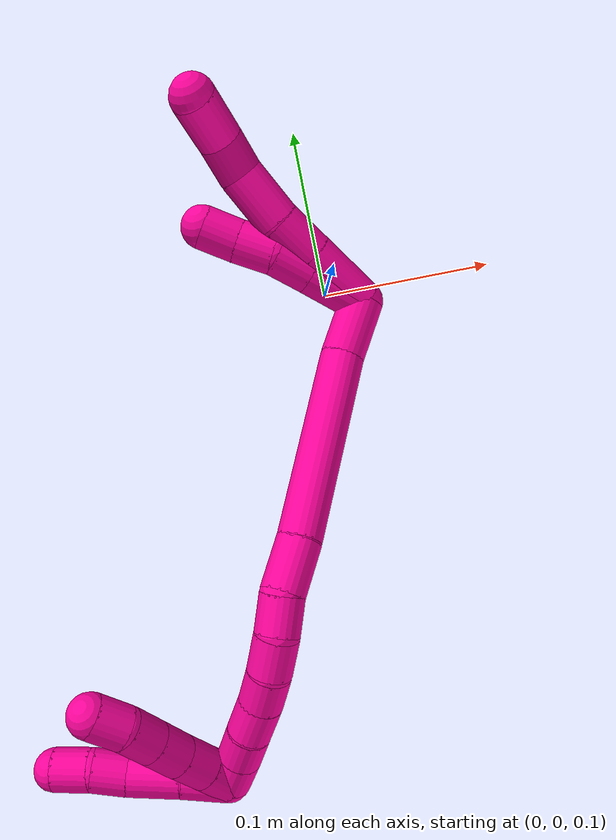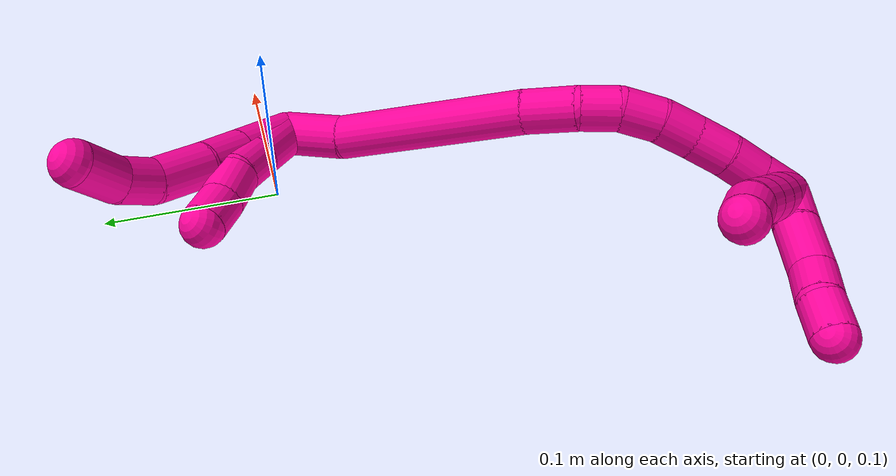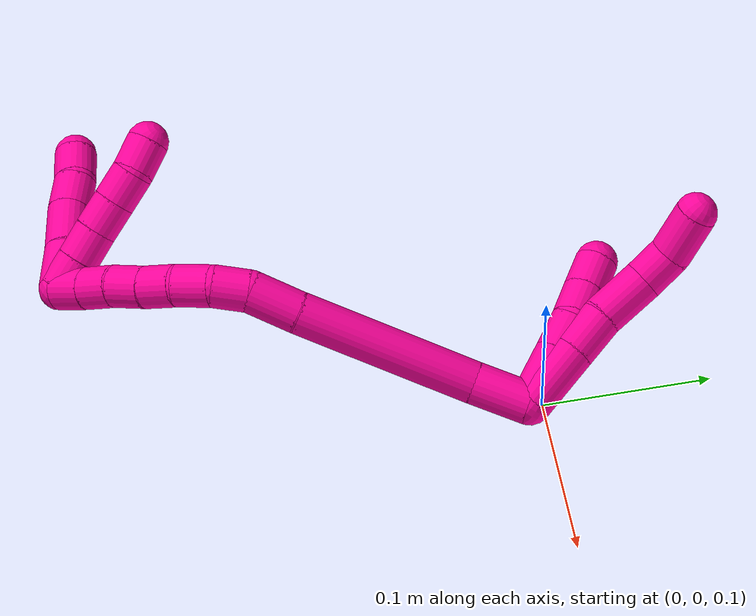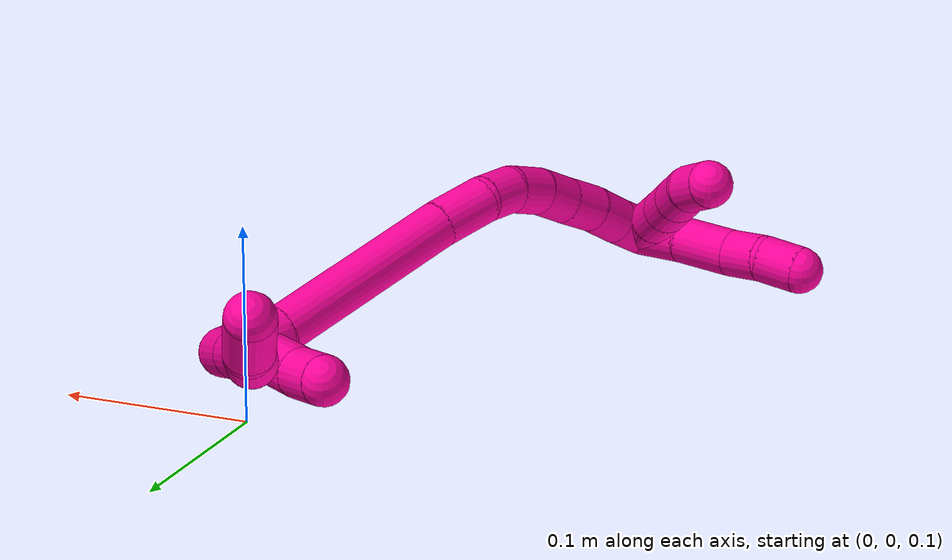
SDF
<sdf version="1.7">
 <world name="default">
  <model name="18">
   <static>0</static>
   <link name="18">
    <collision name="collision-cylinder-e_1_2_8">
     <pose>-0.008768 0.008184 0.015818 -0.477465 -0.457477 0.1132</pose>
     <geometry><cylinder><radius>0.0125</radius><length>0.039703</length></cylinder></geometry>
     <surface>
      <friction><ode><mu>1.16</mu><mu2>1.16</mu2><slip1>0</slip1><slip2>0</slip2></ode></friction>
      <contact><ode><kp>1e+06</kp><kd>1</kd><max_vel>0</max_vel><min_depth>0.001</min_depth></ode></contact>
     </surface>
    </collision>
    <visual name="visual-cylinder-e_1_2_8">
     <pose>-0.008768 0.008184 0.015818 -0.477465 -0.457477 0.1132</pose>
     <geometry><cylinder><radius>0.0125</radius><length>0.039703</length></cylinder></geometry>
     <material><ambient>1 0.007843 0.615686 1</ambient></material>
    </visual>
    <collision name="collision-cylinder-e_2_8_9">
     <pose>-0.023279 0.02175 0.042058 -0.476704 -0.455339 0.112467</pose>
     <geometry><cylinder><radius>0.0125</radius><length>0.026118</length></cylinder></geometry>
     <surface>
      <friction><ode><mu>1.16</mu><mu2>1.16</mu2><slip1>0</slip1><slip2>0</slip2></ode></friction>
      <contact><ode><kp>1e+06</kp><kd>1</kd><max_vel>0</max_vel><min_depth>0.001</min_depth></ode></contact>
     </surface>
    </collision>
    <visual name="visual-cylinder-e_2_8_9">
     <pose>-0.023279 0.02175 0.042058 -0.476704 -0.455339 0.112467</pose>
     <geometry><cylinder><radius>0.0125</radius><length>0.026118</length></cylinder></geometry>
     <material><ambient>1 0.007843 0.615686 1</ambient></material>
    </visual>
    <collision name="collision-cylinder-e_3_9_10">
     <pose>-0.034486 0.035646 0.065376 -0.583485 -0.339829 0.102957</pose>
     <geometry><cylinder><radius>0.0125</radius><length>0.032783</length></cylinder></geometry>
     <surface>
      <friction><ode><mu>1.16</mu><mu2>1.16</mu2><slip1>0</slip1><slip2>0</slip2></ode></friction>
      <contact><ode><kp>1e+06</kp><kd>1</kd><max_vel>0</max_vel><min_depth>0.001</min_depth></ode></contact>
     </surface>
    </collision>
    <visual name="visual-cylinder-e_3_9_10">
     <pose>-0.034486 0.035646 0.065376 -0.583485 -0.339829 0.102957</pose>
     <geometry><cylinder><radius>0.0125</radius><length>0.032783</length></cylinder></geometry>
     <material><ambient>1 0.007843 0.615686 1</ambient></material>
    </visual>
    <collision name="collision-cylinder-e_4_10_11">
     <pose>-0.041833 0.047311 0.088654 -0.294643 -0.171883 0.025568</pose>
     <geometry><cylinder><radius>0.0125</radius><length>0.022023</length></cylinder></geometry>
     <surface>
      <friction><ode><mu>1.16</mu><mu2>1.16</mu2><slip1>0</slip1><slip2>0</slip2></ode></friction>
      <contact><ode><kp>1e+06</kp><kd>1</kd><max_vel>0</max_vel><min_depth>0.001</min_depth></ode></contact>
     </surface>
    </collision>
    <visual name="visual-cylinder-e_4_10_11">
     <pose>-0.041833 0.047311 0.088654 -0.294643 -0.171883 0.025568</pose>
     <geometry><cylinder><radius>0.0125</radius><length>0.022023</length></cylinder></geometry>
     <material><ambient>1 0.007843 0.615686 1</ambient></material>
    </visual>
    <collision name="collision-cylinder-e_5_11_6">
     <pose>-0.045948 0.049668 0.11353 0.054672 -0.152568 -0.00418</pose>
     <geometry><cylinder><radius>0.0125</radius><length>0.029373</length></cylinder></geometry>
     <surface>
      <friction><ode><mu>1.16</mu><mu2>1.16</mu2><slip1>0</slip1><slip2>0</slip2></ode></friction>
      <contact><ode><kp>1e+06</kp><kd>1</kd><max_vel>0</max_vel><min_depth>0.001</min_depth></ode></contact>
     </surface>
    </collision>
    <visual name="visual-cylinder-e_5_11_6">
     <pose>-0.045948 0.049668 0.11353 0.054672 -0.152568 -0.00418</pose>
     <geometry><cylinder><radius>0.0125</radius><length>0.029373</length></cylinder></geometry>
     <material><ambient>1 0.007843 0.615686 1</ambient></material>
    </visual>
    <collision name="collision-cylinder-e_1_2_12">
     <pose>-0.011109 0.005902 0.011745 -0.465625 -0.70165 0.173115</pose>
     <geometry><cylinder><radius>0.0125</radius><length>0.03442</length></cylinder></geometry>
     <surface>
      <friction><ode><mu>1.16</mu><mu2>1.16</mu2><slip1>0</slip1><slip2>0</slip2></ode></friction>
      <contact><ode><kp>1e+06</kp><kd>1</kd><max_vel>0</max_vel><min_depth>0.001</min_depth></ode></contact>
     </surface>
    </collision>
    <visual name="visual-cylinder-e_1_2_12">
     <pose>-0.011109 0.005902 0.011745 -0.465625 -0.70165 0.173115</pose>
     <geometry><cylinder><radius>0.0125</radius><length>0.03442</length></cylinder></geometry>
     <material><ambient>1 0.007843 0.615686 1</ambient></material>
    </visual>
    <collision name="collision-cylinder-e_2_12_13">
     <pose>-0.029675 0.015503 0.031177 -0.448553 -0.71838 0.170887</pose>
     <geometry><cylinder><radius>0.0125</radius><length>0.022663</length></cylinder></geometry>
     <surface>
      <friction><ode><mu>1.16</mu><mu2>1.16</mu2><slip1>0</slip1><slip2>0</slip2></ode></friction>
      <contact><ode><kp>1e+06</kp><kd>1</kd><max_vel>0</max_vel><min_depth>0.001</min_depth></ode></contact>
     </surface>
    </collision>
    <visual name="visual-cylinder-e_2_12_13">
     <pose>-0.029675 0.015503 0.031177 -0.448553 -0.71838 0.170887</pose>
     <geometry><cylinder><radius>0.0125</radius><length>0.022663</length></cylinder></geometry>
     <material><ambient>1 0.007843 0.615686 1</ambient></material>
    </visual>
    <collision name="collision-cylinder-e_3_13_14">
     <pose>-0.04575 0.023946 0.043621 -0.784071 -0.908612 0.398468</pose>
     <geometry><cylinder><radius>0.0125</radius><length>0.021852</length></cylinder></geometry>
     <surface>
      <friction><ode><mu>1.16</mu><mu2>1.16</mu2><slip1>0</slip1><slip2>0</slip2></ode></friction>
      <contact><ode><kp>1e+06</kp><kd>1</kd><max_vel>0</max_vel><min_depth>0.001</min_depth></ode></contact>
     </surface>
    </collision>
    <visual name="visual-cylinder-e_3_13_14">
     <pose>-0.04575 0.023946 0.043621 -0.784071 -0.908612 0.398468</pose>
     <geometry><cylinder><radius>0.0125</radius><length>0.021852</length></cylinder></geometry>
     <material><ambient>1 0.007843 0.615686 1</ambient></material>
    </visual>
    <collision name="collision-cylinder-e_4_14_5">
     <pose>-0.062233 0.032583 0.0542 -0.589333 -0.843294 0.270607</pose>
     <geometry><cylinder><radius>0.0125</radius><length>0.021065</length></cylinder></geometry>
     <surface>
      <friction><ode><mu>1.16</mu><mu2>1.16</mu2><slip1>0</slip1><slip2>0</slip2></ode></friction>
      <contact><ode><kp>1e+06</kp><kd>1</kd><max_vel>0</max_vel><min_depth>0.001</min_depth></ode></contact>
     </surface>
    </collision>
    <visual name="visual-cylinder-e_4_14_5">
     <pose>-0.062233 0.032583 0.0542 -0.589333 -0.843294 0.270607</pose>
     <geometry><cylinder><radius>0.0125</radius><length>0.021065</length></cylinder></geometry>
     <material><ambient>1 0.007843 0.615686 1</ambient></material>
    </visual>
    <collision name="collision-cylinder-e_1_2_15">
     <pose>-0.010362 -0.012506 -0.006009 2.01874 -0.641453 -0.971883</pose>
     <geometry><cylinder><radius>0.0125</radius><length>0.034634</length></cylinder></geometry>
     <surface>
      <friction><ode><mu>1.16</mu><mu2>1.16</mu2><slip1>0</slip1><slip2>0</slip2></ode></friction>
      <contact><ode><kp>1e+06</kp><kd>1</kd><max_vel>0</max_vel><min_depth>0.001</min_depth></ode></contact>
     </surface>
    </collision>
    <visual name="visual-cylinder-e_1_2_15">
     <pose>-0.010362 -0.012506 -0.006009 2.01874 -0.641453 -0.971883</pose>
     <geometry><cylinder><radius>0.0125</radius><length>0.034634</length></cylinder></geometry>
     <material><ambient>1 0.007843 0.615686 1</ambient></material>
    </visual>
    <collision name="collision-cylinder-e_2_15_16">
     <pose>-0.047148 -0.071065 -0.024922 1.84397 -0.50476 -0.655587</pose>
     <geometry><cylinder><radius>0.0125</radius><length>0.109282</length></cylinder></geometry>
     <surface>
      <friction><ode><mu>1.16</mu><mu2>1.16</mu2><slip1>0</slip1><slip2>0</slip2></ode></friction>
      <contact><ode><kp>1e+06</kp><kd>1</kd><max_vel>0</max_vel><min_depth>0.001</min_depth></ode></contact>
     </surface>
    </collision>
    <visual name="visual-cylinder-e_2_15_16">
     <pose>-0.047148 -0.071065 -0.024922 1.84397 -0.50476 -0.655587</pose>
     <geometry><cylinder><radius>0.0125</radius><length>0.109282</length></cylinder></geometry>
     <material><ambient>1 0.007843 0.615686 1</ambient></material>
    </visual>
    <collision name="collision-cylinder-e_3_16_17">
     <pose>-0.081913 -0.129222 -0.041467 1.8631 -0.583309 -0.767654</pose>
     <geometry><cylinder><radius>0.0125</radius><length>0.030287</length></cylinder></geometry>
     <surface>
      <friction><ode><mu>1.16</mu><mu2>1.16</mu2><slip1>0</slip1><slip2>0</slip2></ode></friction>
      <contact><ode><kp>1e+06</kp><kd>1</kd><max_vel>0</max_vel><min_depth>0.001</min_depth></ode></contact>
     </surface>
    </collision>
    <visual name="visual-cylinder-e_3_16_17">
     <pose>-0.081913 -0.129222 -0.041467 1.8631 -0.583309 -0.767654</pose>
     <geometry><cylinder><radius>0.0125</radius><length>0.030287</length></cylinder></geometry>
     <material><ambient>1 0.007843 0.615686 1</ambient></material>
    </visual>
    <collision name="collision-cylinder-e_4_17_18">
     <pose>-0.095047 -0.149325 -0.050566 2.1694 -0.459668 -0.833699</pose>
     <geometry><cylinder><radius>0.0125</radius><length>0.02161</length></cylinder></geometry>
     <surface>
      <friction><ode><mu>1.16</mu><mu2>1.16</mu2><slip1>0</slip1><slip2>0</slip2></ode></friction>
      <contact><ode><kp>1e+06</kp><kd>1</kd><max_vel>0</max_vel><min_depth>0.001</min_depth></ode></contact>
     </surface>
    </collision>
    <visual name="visual-cylinder-e_4_17_18">
     <pose>-0.095047 -0.149325 -0.050566 2.1694 -0.459668 -0.833699</pose>
     <geometry><cylinder><radius>0.0125</radius><length>0.02161</length></cylinder></geometry>
     <material><ambient>1 0.007843 0.615686 1</ambient></material>
    </visual>
    <collision name="collision-cylinder-e_5_18_19">
     <pose>-0.105515 -0.163062 -0.063623 2.49492 -0.537314 -1.37555</pose>
     <geometry><cylinder><radius>0.0125</radius><length>0.02217</length></cylinder></geometry>
     <surface>
      <friction><ode><mu>1.16</mu><mu2>1.16</mu2><slip1>0</slip1><slip2>0</slip2></ode></friction>
      <contact><ode><kp>1e+06</kp><kd>1</kd><max_vel>0</max_vel><min_depth>0.001</min_depth></ode></contact>
     </surface>
    </collision>
    <visual name="visual-cylinder-e_5_18_19">
     <pose>-0.105515 -0.163062 -0.063623 2.49492 -0.537314 -1.37555</pose>
     <geometry><cylinder><radius>0.0125</radius><length>0.02217</length></cylinder></geometry>
     <material><ambient>1 0.007843 0.615686 1</ambient></material>
    </visual>
    <collision name="collision-cylinder-e_6_19_20">
     <pose>-0.116828 -0.172402 -0.079033 2.70946 -0.580425 -1.87398</pose>
     <geometry><cylinder><radius>0.0125</radius><length>0.02057</length></cylinder></geometry>
     <surface>
      <friction><ode><mu>1.16</mu><mu2>1.16</mu2><slip1>0</slip1><slip2>0</slip2></ode></friction>
      <contact><ode><kp>1e+06</kp><kd>1</kd><max_vel>0</max_vel><min_depth>0.001</min_depth></ode></contact>
     </surface>
    </collision>
    <visual name="visual-cylinder-e_6_19_20">
     <pose>-0.116828 -0.172402 -0.079033 2.70946 -0.580425 -1.87398</pose>
     <geometry><cylinder><radius>0.0125</radius><length>0.02057</length></cylinder></geometry>
     <material><ambient>1 0.007843 0.615686 1</ambient></material>
    </visual>
    <collision name="collision-cylinder-e_7_20_21">
     <pose>-0.129031 -0.179632 -0.094403 2.6942 -0.664103 -1.97515</pose>
     <geometry><cylinder><radius>0.0125</radius><length>0.021296</length></cylinder></geometry>
     <surface>
      <friction><ode><mu>1.16</mu><mu2>1.16</mu2><slip1>0</slip1><slip2>0</slip2></ode></friction>
      <contact><ode><kp>1e+06</kp><kd>1</kd><max_vel>0</max_vel><min_depth>0.001</min_depth></ode></contact>
     </surface>
    </collision>
    <visual name="visual-cylinder-e_7_20_21">
     <pose>-0.129031 -0.179632 -0.094403 2.6942 -0.664103 -1.97515</pose>
     <geometry><cylinder><radius>0.0125</radius><length>0.021296</length></cylinder></geometry>
     <material><ambient>1 0.007843 0.615686 1</ambient></material>
    </visual>
    <collision name="collision-cylinder-e_8_21_22">
     <pose>-0.141408 -0.185719 -0.109751 2.83566 -0.618611 -2.24259</pose>
     <geometry><cylinder><radius>0.0125</radius><length>0.020051</length></cylinder></geometry>
     <surface>
      <friction><ode><mu>1.16</mu><mu2>1.16</mu2><slip1>0</slip1><slip2>0</slip2></ode></friction>
      <contact><ode><kp>1e+06</kp><kd>1</kd><max_vel>0</max_vel><min_depth>0.001</min_depth></ode></contact>
     </surface>
    </collision>
    <visual name="visual-cylinder-e_8_21_22">
     <pose>-0.141408 -0.185719 -0.109751 2.83566 -0.618611 -2.24259</pose>
     <geometry><cylinder><radius>0.0125</radius><length>0.020051</length></cylinder></geometry>
     <material><ambient>1 0.007843 0.615686 1</ambient></material>
    </visual>
    <collision name="collision-cylinder-e_9_22_1">
     <pose>-0.153392 -0.190801 -0.125027 2.80477 -0.660984 -2.22137</pose>
     <geometry><cylinder><radius>0.0125</radius><length>0.0201</length></cylinder></geometry>
     <surface>
      <friction><ode><mu>1.16</mu><mu2>1.16</mu2><slip1>0</slip1><slip2>0</slip2></ode></friction>
      <contact><ode><kp>1e+06</kp><kd>1</kd><max_vel>0</max_vel><min_depth>0.001</min_depth></ode></contact>
     </surface>
    </collision>
    <visual name="visual-cylinder-e_9_22_1">
     <pose>-0.153392 -0.190801 -0.125027 2.80477 -0.660984 -2.22137</pose>
     <geometry><cylinder><radius>0.0125</radius><length>0.0201</length></cylinder></geometry>
     <material><ambient>1 0.007843 0.615686 1</ambient></material>
    </visual>
    <collision name="collision-cylinder-e_1_1_23">
     <pose>-0.171761 -0.190305 -0.127656 -0.570602 -1.1288 0.367196</pose>
     <geometry><cylinder><radius>0.0125</radius><length>0.026993</length></cylinder></geometry>
     <surface>
      <friction><ode><mu>1.16</mu><mu2>1.16</mu2><slip1>0</slip1><slip2>0</slip2></ode></friction>
      <contact><ode><kp>1e+06</kp><kd>1</kd><max_vel>0</max_vel><min_depth>0.001</min_depth></ode></contact>
     </surface>
    </collision>
    <visual name="visual-cylinder-e_1_1_23">
     <pose>-0.171761 -0.190305 -0.127656 -0.570602 -1.1288 0.367196</pose>
     <geometry><cylinder><radius>0.0125</radius><length>0.026993</length></cylinder></geometry>
     <material><ambient>1 0.007843 0.615686 1</ambient></material>
    </visual>
    <collision name="collision-cylinder-e_2_23_24">
     <pose>-0.198367 -0.183521 -0.119087 -0.779247 -1.22346 0.560907</pose>
     <geometry><cylinder><radius>0.0125</radius><length>0.030644</length></cylinder></geometry>
     <surface>
      <friction><ode><mu>1.16</mu><mu2>1.16</mu2><slip1>0</slip1><slip2>0</slip2></ode></friction>
      <contact><ode><kp>1e+06</kp><kd>1</kd><max_vel>0</max_vel><min_depth>0.001</min_depth></ode></contact>
     </surface>
    </collision>
    <visual name="visual-cylinder-e_2_23_24">
     <pose>-0.198367 -0.183521 -0.119087 -0.779247 -1.22346 0.560907</pose>
     <geometry><cylinder><radius>0.0125</radius><length>0.030644</length></cylinder></geometry>
     <material><ambient>1 0.007843 0.615686 1</ambient></material>
    </visual>
    <collision name="collision-cylinder-e_3_24_25">
     <pose>-0.221889 -0.177289 -0.111038 -0.534237 -1.06562 0.319991</pose>
     <geometry><cylinder><radius>0.0125</radius><length>0.020832</length></cylinder></geometry>
     <surface>
      <friction><ode><mu>1.16</mu><mu2>1.16</mu2><slip1>0</slip1><slip2>0</slip2></ode></friction>
      <contact><ode><kp>1e+06</kp><kd>1</kd><max_vel>0</max_vel><min_depth>0.001</min_depth></ode></contact>
     </surface>
    </collision>
    <visual name="visual-cylinder-e_3_24_25">
     <pose>-0.221889 -0.177289 -0.111038 -0.534237 -1.06562 0.319991</pose>
     <geometry><cylinder><radius>0.0125</radius><length>0.020832</length></cylinder></geometry>
     <material><ambient>1 0.007843 0.615686 1</ambient></material>
    </visual>
    <collision name="collision-cylinder-e_4_25_4">
     <pose>-0.241291 -0.172097 -0.104916 -0.97415 -1.27149 0.745181</pose>
     <geometry><cylinder><radius>0.0125</radius><length>0.021531</length></cylinder></geometry>
     <surface>
      <friction><ode><mu>1.16</mu><mu2>1.16</mu2><slip1>0</slip1><slip2>0</slip2></ode></friction>
      <contact><ode><kp>1e+06</kp><kd>1</kd><max_vel>0</max_vel><min_depth>0.001</min_depth></ode></contact>
     </surface>
    </collision>
    <visual name="visual-cylinder-e_4_25_4">
     <pose>-0.241291 -0.172097 -0.104916 -0.97415 -1.27149 0.745181</pose>
     <geometry><cylinder><radius>0.0125</radius><length>0.021531</length></cylinder></geometry>
     <material><ambient>1 0.007843 0.615686 1</ambient></material>
    </visual>
    <collision name="collision-cylinder-e_1_1_26">
     <pose>-0.163347 -0.191759 -0.12341 -0.180775 -0.388291 0.035638</pose>
     <geometry><cylinder><radius>0.0125</radius><length>0.02</length></cylinder></geometry>
     <surface>
      <friction><ode><mu>1.16</mu><mu2>1.16</mu2><slip1>0</slip1><slip2>0</slip2></ode></friction>
      <contact><ode><kp>1e+06</kp><kd>1</kd><max_vel>0</max_vel><min_depth>0.001</min_depth></ode></contact>
     </surface>
    </collision>
    <visual name="visual-cylinder-e_1_1_26">
     <pose>-0.163347 -0.191759 -0.12341 -0.180775 -0.388291 0.035638</pose>
     <geometry><cylinder><radius>0.0125</radius><length>0.02</length></cylinder></geometry>
     <material><ambient>1 0.007843 0.615686 1</ambient></material>
    </visual>
    <collision name="collision-cylinder-e_2_26_27">
     <pose>-0.171193 -0.188464 -0.105313 -0.179397 -0.417981 0.038146</pose>
     <geometry><cylinder><radius>0.0125</radius><length>0.02</length></cylinder></geometry>
     <surface>
      <friction><ode><mu>1.16</mu><mu2>1.16</mu2><slip1>0</slip1><slip2>0</slip2></ode></friction>
      <contact><ode><kp>1e+06</kp><kd>1</kd><max_vel>0</max_vel><min_depth>0.001</min_depth></ode></contact>
     </surface>
    </collision>
    <visual name="visual-cylinder-e_2_26_27">
     <pose>-0.171193 -0.188464 -0.105313 -0.179397 -0.417981 0.038146</pose>
     <geometry><cylinder><radius>0.0125</radius><length>0.02</length></cylinder></geometry>
     <material><ambient>1 0.007843 0.615686 1</ambient></material>
    </visual>
    <collision name="collision-cylinder-e_3_27_28">
     <pose>-0.179054 -0.18503 -0.087249 -0.196222 -0.390058 0.038882</pose>
     <geometry><cylinder><radius>0.0125</radius><length>0.02</length></cylinder></geometry>
     <surface>
      <friction><ode><mu>1.16</mu><mu2>1.16</mu2><slip1>0</slip1><slip2>0</slip2></ode></friction>
      <contact><ode><kp>1e+06</kp><kd>1</kd><max_vel>0</max_vel><min_depth>0.001</min_depth></ode></contact>
     </surface>
    </collision>
    <visual name="visual-cylinder-e_3_27_28">
     <pose>-0.179054 -0.18503 -0.087249 -0.196222 -0.390058 0.038882</pose>
     <geometry><cylinder><radius>0.0125</radius><length>0.02</length></cylinder></geometry>
     <material><ambient>1 0.007843 0.615686 1</ambient></material>
    </visual>
    <collision name="collision-cylinder-e_4_28_29">
     <pose>-0.186685 -0.181447 -0.069112 -0.193817 -0.392873 0.038687</pose>
     <geometry><cylinder><radius>0.0125</radius><length>0.02</length></cylinder></geometry>
     <surface>
      <friction><ode><mu>1.16</mu><mu2>1.16</mu2><slip1>0</slip1><slip2>0</slip2></ode></friction>
      <contact><ode><kp>1e+06</kp><kd>1</kd><max_vel>0</max_vel><min_depth>0.001</min_depth></ode></contact>
     </surface>
    </collision>
    <visual name="visual-cylinder-e_4_28_29">
     <pose>-0.186685 -0.181447 -0.069112 -0.193817 -0.392873 0.038687</pose>
     <geometry><cylinder><radius>0.0125</radius><length>0.02</length></cylinder></geometry>
     <material><ambient>1 0.007843 0.615686 1</ambient></material>
    </visual>
    <collision name="collision-cylinder-e_5_29_3">
     <pose>-0.196566 -0.177257 -0.05246 -0.307702 -0.650023 0.104414</pose>
     <geometry><cylinder><radius>0.0125</radius><length>0.02</length></cylinder></geometry>
     <surface>
      <friction><ode><mu>1.16</mu><mu2>1.16</mu2><slip1>0</slip1><slip2>0</slip2></ode></friction>
      <contact><ode><kp>1e+06</kp><kd>1</kd><max_vel>0</max_vel><min_depth>0.001</min_depth></ode></contact>
     </surface>
    </collision>
    <visual name="visual-cylinder-e_5_29_3">
     <pose>-0.196566 -0.177257 -0.05246 -0.307702 -0.650023 0.104414</pose>
     <geometry><cylinder><radius>0.0125</radius><length>0.02</length></cylinder></geometry>
     <material><ambient>1 0.007843 0.615686 1</ambient></material>
    </visual>
    <collision name="collision-sphere-3">
     <pose>-0.202618 -0.174846 -0.044873 0 -0 0</pose>
     <geometry><sphere><radius>0.0125</radius></sphere></geometry>
     <surface>
      <friction><ode><mu>1.16</mu><mu2>1.16</mu2><slip1>0</slip1><slip2>0</slip2></ode></friction>
      <contact><ode><kp>1e+06</kp><kd>1</kd><max_vel>0</max_vel><min_depth>0.001</min_depth></ode></contact>
     </surface>
    </collision>
    <visual name="visual-sphere-3">
     <pose>-0.202618 -0.174846 -0.044873 0 -0 0</pose>
     <geometry><sphere><radius>0.0125</radius></sphere></geometry>
     <material><ambient>1 0.007843 0.615686 1</ambient></material>
    </visual>
    <collision name="collision-sphere-29">
     <pose>-0.190514 -0.179668 -0.060047 0 -0 0</pose>
     <geometry><sphere><radius>0.0125</radius></sphere></geometry>
     <surface>
      <friction><ode><mu>1.16</mu><mu2>1.16</mu2><slip1>0</slip1><slip2>0</slip2></ode></friction>
      <contact><ode><kp>1e+06</kp><kd>1</kd><max_vel>0</max_vel><min_depth>0.001</min_depth></ode></contact>
     </surface>
    </collision>
    <visual name="visual-sphere-29">
     <pose>-0.190514 -0.179668 -0.060047 0 -0 0</pose>
     <geometry><sphere><radius>0.0125</radius></sphere></geometry>
     <material><ambient>1 0.007843 0.615686 1</ambient></material>
    </visual>
    <collision name="collision-sphere-28">
     <pose>-0.182857 -0.183227 -0.078177 0 -0 0</pose>
     <geometry><sphere><radius>0.0125</radius></sphere></geometry>
     <surface>
      <friction><ode><mu>1.16</mu><mu2>1.16</mu2><slip1>0</slip1><slip2>0</slip2></ode></friction>
      <contact><ode><kp>1e+06</kp><kd>1</kd><max_vel>0</max_vel><min_depth>0.001</min_depth></ode></contact>
     </surface>
    </collision>
    <visual name="visual-sphere-28">
     <pose>-0.182857 -0.183227 -0.078177 0 -0 0</pose>
     <geometry><sphere><radius>0.0125</radius></sphere></geometry>
     <material><ambient>1 0.007843 0.615686 1</ambient></material>
    </visual>
    <collision name="collision-sphere-27">
     <pose>-0.175252 -0.186833 -0.09632 0 -0 0</pose>
     <geometry><sphere><radius>0.0125</radius></sphere></geometry>
     <surface>
      <friction><ode><mu>1.16</mu><mu2>1.16</mu2><slip1>0</slip1><slip2>0</slip2></ode></friction>
      <contact><ode><kp>1e+06</kp><kd>1</kd><max_vel>0</max_vel><min_depth>0.001</min_depth></ode></contact>
     </surface>
    </collision>
    <visual name="visual-sphere-27">
     <pose>-0.175252 -0.186833 -0.09632 0 -0 0</pose>
     <geometry><sphere><radius>0.0125</radius></sphere></geometry>
     <material><ambient>1 0.007843 0.615686 1</ambient></material>
    </visual>
    <collision name="collision-sphere-26">
     <pose>-0.167133 -0.190095 -0.114305 0 -0 0</pose>
     <geometry><sphere><radius>0.0125</radius></sphere></geometry>
     <surface>
      <friction><ode><mu>1.16</mu><mu2>1.16</mu2><slip1>0</slip1><slip2>0</slip2></ode></friction>
      <contact><ode><kp>1e+06</kp><kd>1</kd><max_vel>0</max_vel><min_depth>0.001</min_depth></ode></contact>
     </surface>
    </collision>
    <visual name="visual-sphere-26">
     <pose>-0.167133 -0.190095 -0.114305 0 -0 0</pose>
     <geometry><sphere><radius>0.0125</radius></sphere></geometry>
     <material><ambient>1 0.007843 0.615686 1</ambient></material>
    </visual>
    <collision name="collision-sphere-4">
     <pose>-0.251578 -0.169471 -0.103132 0 -0 0</pose>
     <geometry><sphere><radius>0.0125</radius></sphere></geometry>
     <surface>
      <friction><ode><mu>1.16</mu><mu2>1.16</mu2><slip1>0</slip1><slip2>0</slip2></ode></friction>
      <contact><ode><kp>1e+06</kp><kd>1</kd><max_vel>0</max_vel><min_depth>0.001</min_depth></ode></contact>
     </surface>
    </collision>
    <visual name="visual-sphere-4">
     <pose>-0.251578 -0.169471 -0.103132 0 -0 0</pose>
     <geometry><sphere><radius>0.0125</radius></sphere></geometry>
     <material><ambient>1 0.007843 0.615686 1</ambient></material>
    </visual>
    <collision name="collision-sphere-25">
     <pose>-0.231004 -0.174722 -0.106699 0 -0 0</pose>
     <geometry><sphere><radius>0.0125</radius></sphere></geometry>
     <surface>
      <friction><ode><mu>1.16</mu><mu2>1.16</mu2><slip1>0</slip1><slip2>0</slip2></ode></friction>
      <contact><ode><kp>1e+06</kp><kd>1</kd><max_vel>0</max_vel><min_depth>0.001</min_depth></ode></contact>
     </surface>
    </collision>
    <visual name="visual-sphere-25">
     <pose>-0.231004 -0.174722 -0.106699 0 -0 0</pose>
     <geometry><sphere><radius>0.0125</radius></sphere></geometry>
     <material><ambient>1 0.007843 0.615686 1</ambient></material>
    </visual>
    <collision name="collision-sphere-24">
     <pose>-0.212774 -0.179856 -0.115377 0 -0 0</pose>
     <geometry><sphere><radius>0.0125</radius></sphere></geometry>
     <surface>
      <friction><ode><mu>1.16</mu><mu2>1.16</mu2><slip1>0</slip1><slip2>0</slip2></ode></friction>
      <contact><ode><kp>1e+06</kp><kd>1</kd><max_vel>0</max_vel><min_depth>0.001</min_depth></ode></contact>
     </surface>
    </collision>
    <visual name="visual-sphere-24">
     <pose>-0.212774 -0.179856 -0.115377 0 -0 0</pose>
     <geometry><sphere><radius>0.0125</radius></sphere></geometry>
     <material><ambient>1 0.007843 0.615686 1</ambient></material>
    </visual>
    <collision name="collision-sphere-23">
     <pose>-0.183961 -0.187186 -0.122798 0 -0 0</pose>
     <geometry><sphere><radius>0.0125</radius></sphere></geometry>
     <surface>
      <friction><ode><mu>1.16</mu><mu2>1.16</mu2><slip1>0</slip1><slip2>0</slip2></ode></friction>
      <contact><ode><kp>1e+06</kp><kd>1</kd><max_vel>0</max_vel><min_depth>0.001</min_depth></ode></contact>
     </surface>
    </collision>
    <visual name="visual-sphere-23">
     <pose>-0.183961 -0.187186 -0.122798 0 -0 0</pose>
     <geometry><sphere><radius>0.0125</radius></sphere></geometry>
     <material><ambient>1 0.007843 0.615686 1</ambient></material>
    </visual>
    <collision name="collision-sphere-1">
     <pose>-0.159561 -0.193423 -0.132515 0 -0 0</pose>
     <geometry><sphere><radius>0.0125</radius></sphere></geometry>
     <surface>
      <friction><ode><mu>1.16</mu><mu2>1.16</mu2><slip1>0</slip1><slip2>0</slip2></ode></friction>
      <contact><ode><kp>1e+06</kp><kd>1</kd><max_vel>0</max_vel><min_depth>0.001</min_depth></ode></contact>
     </surface>
    </collision>
    <visual name="visual-sphere-1">
     <pose>-0.159561 -0.193423 -0.132515 0 -0 0</pose>
     <geometry><sphere><radius>0.0125</radius></sphere></geometry>
     <material><ambient>1 0.007843 0.615686 1</ambient></material>
    </visual>
    <collision name="collision-sphere-22">
     <pose>-0.147222 -0.188179 -0.117539 0 -0 0</pose>
     <geometry><sphere><radius>0.0125</radius></sphere></geometry>
     <surface>
      <friction><ode><mu>1.16</mu><mu2>1.16</mu2><slip1>0</slip1><slip2>0</slip2></ode></friction>
      <contact><ode><kp>1e+06</kp><kd>1</kd><max_vel>0</max_vel><min_depth>0.001</min_depth></ode></contact>
     </surface>
    </collision>
    <visual name="visual-sphere-22">
     <pose>-0.147222 -0.188179 -0.117539 0 -0 0</pose>
     <geometry><sphere><radius>0.0125</radius></sphere></geometry>
     <material><ambient>1 0.007843 0.615686 1</ambient></material>
    </visual>
    <collision name="collision-sphere-21">
     <pose>-0.135594 -0.183259 -0.101962 0 -0 0</pose>
     <geometry><sphere><radius>0.0125</radius></sphere></geometry>
     <surface>
      <friction><ode><mu>1.16</mu><mu2>1.16</mu2><slip1>0</slip1><slip2>0</slip2></ode></friction>
      <contact><ode><kp>1e+06</kp><kd>1</kd><max_vel>0</max_vel><min_depth>0.001</min_depth></ode></contact>
     </surface>
    </collision>
    <visual name="visual-sphere-21">
     <pose>-0.135594 -0.183259 -0.101962 0 -0 0</pose>
     <geometry><sphere><radius>0.0125</radius></sphere></geometry>
     <material><ambient>1 0.007843 0.615686 1</ambient></material>
    </visual>
    <collision name="collision-sphere-6">
     <pose>-0.04818 0.048875 0.128025 0 -0 0</pose>
     <geometry><sphere><radius>0.0125</radius></sphere></geometry>
     <surface>
      <friction><ode><mu>1.16</mu><mu2>1.16</mu2><slip1>0</slip1><slip2>0</slip2></ode></friction>
      <contact><ode><kp>1e+06</kp><kd>1</kd><max_vel>0</max_vel><min_depth>0.001</min_depth></ode></contact>
     </surface>
    </collision>
    <visual name="visual-sphere-6">
     <pose>-0.04818 0.048875 0.128025 0 -0 0</pose>
     <geometry><sphere><radius>0.0125</radius></sphere></geometry>
     <material><ambient>1 0.007843 0.615686 1</ambient></material>
    </visual>
    <collision name="collision-sphere-11">
     <pose>-0.043716 0.050462 0.099036 0 -0 0</pose>
     <geometry><sphere><radius>0.0125</radius></sphere></geometry>
     <surface>
      <friction><ode><mu>1.16</mu><mu2>1.16</mu2><slip1>0</slip1><slip2>0</slip2></ode></friction>
      <contact><ode><kp>1e+06</kp><kd>1</kd><max_vel>0</max_vel><min_depth>0.001</min_depth></ode></contact>
     </surface>
    </collision>
    <visual name="visual-sphere-11">
     <pose>-0.043716 0.050462 0.099036 0 -0 0</pose>
     <geometry><sphere><radius>0.0125</radius></sphere></geometry>
     <material><ambient>1 0.007843 0.615686 1</ambient></material>
    </visual>
    <collision name="collision-sphere-10">
     <pose>-0.03995 0.04416 0.078273 0 -0 0</pose>
     <geometry><sphere><radius>0.0125</radius></sphere></geometry>
     <surface>
      <friction><ode><mu>1.16</mu><mu2>1.16</mu2><slip1>0</slip1><slip2>0</slip2></ode></friction>
      <contact><ode><kp>1e+06</kp><kd>1</kd><max_vel>0</max_vel><min_depth>0.001</min_depth></ode></contact>
     </surface>
    </collision>
    <visual name="visual-sphere-10">
     <pose>-0.03995 0.04416 0.078273 0 -0 0</pose>
     <geometry><sphere><radius>0.0125</radius></sphere></geometry>
     <material><ambient>1 0.007843 0.615686 1</ambient></material>
    </visual>
    <collision name="collision-sphere-9">
     <pose>-0.029022 0.027132 0.052478 0 -0 0</pose>
     <geometry><sphere><radius>0.0125</radius></sphere></geometry>
     <surface>
      <friction><ode><mu>1.16</mu><mu2>1.16</mu2><slip1>0</slip1><slip2>0</slip2></ode></friction>
      <contact><ode><kp>1e+06</kp><kd>1</kd><max_vel>0</max_vel><min_depth>0.001</min_depth></ode></contact>
     </surface>
    </collision>
    <visual name="visual-sphere-9">
     <pose>-0.029022 0.027132 0.052478 0 -0 0</pose>
     <geometry><sphere><radius>0.0125</radius></sphere></geometry>
     <material><ambient>1 0.007843 0.615686 1</ambient></material>
    </visual>
    <collision name="collision-sphere-2">
     <geometry><sphere><radius>0.0125</radius></sphere></geometry>
     <surface>
      <friction><ode><mu>1.16</mu><mu2>1.16</mu2><slip1>0</slip1><slip2>0</slip2></ode></friction>
      <contact><ode><kp>1e+06</kp><kd>1</kd><max_vel>0</max_vel><min_depth>0.001</min_depth></ode></contact>
     </surface>
    </collision>
    <visual name="visual-sphere-2">
     <geometry><sphere><radius>0.0125</radius></sphere></geometry>
     <material><ambient>1 0.007843 0.615686 1</ambient></material>
    </visual>
    <collision name="collision-sphere-19">
     <pose>-0.111188 -0.1688 -0.071223 0 -0 0</pose>
     <geometry><sphere><radius>0.0125</radius></sphere></geometry>
     <surface>
      <friction><ode><mu>1.16</mu><mu2>1.16</mu2><slip1>0</slip1><slip2>0</slip2></ode></friction>
      <contact><ode><kp>1e+06</kp><kd>1</kd><max_vel>0</max_vel><min_depth>0.001</min_depth></ode></contact>
     </surface>
    </collision>
    <visual name="visual-sphere-19">
     <pose>-0.111188 -0.1688 -0.071223 0 -0 0</pose>
     <geometry><sphere><radius>0.0125</radius></sphere></geometry>
     <material><ambient>1 0.007843 0.615686 1</ambient></material>
    </visual>
    <collision name="collision-sphere-8">
     <pose>-0.017536 0.016369 0.031637 0 -0 0</pose>
     <geometry><sphere><radius>0.0125</radius></sphere></geometry>
     <surface>
      <friction><ode><mu>1.16</mu><mu2>1.16</mu2><slip1>0</slip1><slip2>0</slip2></ode></friction>
      <contact><ode><kp>1e+06</kp><kd>1</kd><max_vel>0</max_vel><min_depth>0.001</min_depth></ode></contact>
     </surface>
    </collision>
    <visual name="visual-sphere-8">
     <pose>-0.017536 0.016369 0.031637 0 -0 0</pose>
     <geometry><sphere><radius>0.0125</radius></sphere></geometry>
     <material><ambient>1 0.007843 0.615686 1</ambient></material>
    </visual>
    <collision name="collision-sphere-12">
     <pose>-0.022217 0.011803 0.02349 0 -0 0</pose>
     <geometry><sphere><radius>0.0125</radius></sphere></geometry>
     <surface>
      <friction><ode><mu>1.16</mu><mu2>1.16</mu2><slip1>0</slip1><slip2>0</slip2></ode></friction>
      <contact><ode><kp>1e+06</kp><kd>1</kd><max_vel>0</max_vel><min_depth>0.001</min_depth></ode></contact>
     </surface>
    </collision>
    <visual name="visual-sphere-12">
     <pose>-0.022217 0.011803 0.02349 0 -0 0</pose>
     <geometry><sphere><radius>0.0125</radius></sphere></geometry>
     <material><ambient>1 0.007843 0.615686 1</ambient></material>
    </visual>
    <collision name="collision-sphere-13">
     <pose>-0.037133 0.019203 0.038865 0 -0 0</pose>
     <geometry><sphere><radius>0.0125</radius></sphere></geometry>
     <surface>
      <friction><ode><mu>1.16</mu><mu2>1.16</mu2><slip1>0</slip1><slip2>0</slip2></ode></friction>
      <contact><ode><kp>1e+06</kp><kd>1</kd><max_vel>0</max_vel><min_depth>0.001</min_depth></ode></contact>
     </surface>
    </collision>
    <visual name="visual-sphere-13">
     <pose>-0.037133 0.019203 0.038865 0 -0 0</pose>
     <geometry><sphere><radius>0.0125</radius></sphere></geometry>
     <material><ambient>1 0.007843 0.615686 1</ambient></material>
    </visual>
    <collision name="collision-sphere-14">
     <pose>-0.054367 0.02869 0.048378 0 -0 0</pose>
     <geometry><sphere><radius>0.0125</radius></sphere></geometry>
     <surface>
      <friction><ode><mu>1.16</mu><mu2>1.16</mu2><slip1>0</slip1><slip2>0</slip2></ode></friction>
      <contact><ode><kp>1e+06</kp><kd>1</kd><max_vel>0</max_vel><min_depth>0.001</min_depth></ode></contact>
     </surface>
    </collision>
    <visual name="visual-sphere-14">
     <pose>-0.054367 0.02869 0.048378 0 -0 0</pose>
     <geometry><sphere><radius>0.0125</radius></sphere></geometry>
     <material><ambient>1 0.007843 0.615686 1</ambient></material>
    </visual>
    <collision name="collision-sphere-5">
     <pose>-0.070099 0.036476 0.060023 0 -0 0</pose>
     <geometry><sphere><radius>0.0125</radius></sphere></geometry>
     <surface>
      <friction><ode><mu>1.16</mu><mu2>1.16</mu2><slip1>0</slip1><slip2>0</slip2></ode></friction>
      <contact><ode><kp>1e+06</kp><kd>1</kd><max_vel>0</max_vel><min_depth>0.001</min_depth></ode></contact>
     </surface>
    </collision>
    <visual name="visual-sphere-5">
     <pose>-0.070099 0.036476 0.060023 0 -0 0</pose>
     <geometry><sphere><radius>0.0125</radius></sphere></geometry>
     <material><ambient>1 0.007843 0.615686 1</ambient></material>
    </visual>
    <collision name="collision-sphere-15">
     <pose>-0.020724 -0.025012 -0.012019 0 -0 0</pose>
     <geometry><sphere><radius>0.0125</radius></sphere></geometry>
     <surface>
      <friction><ode><mu>1.16</mu><mu2>1.16</mu2><slip1>0</slip1><slip2>0</slip2></ode></friction>
      <contact><ode><kp>1e+06</kp><kd>1</kd><max_vel>0</max_vel><min_depth>0.001</min_depth></ode></contact>
     </surface>
    </collision>
    <visual name="visual-sphere-15">
     <pose>-0.020724 -0.025012 -0.012019 0 -0 0</pose>
     <geometry><sphere><radius>0.0125</radius></sphere></geometry>
     <material><ambient>1 0.007843 0.615686 1</ambient></material>
    </visual>
    <collision name="collision-sphere-16">
     <pose>-0.073572 -0.117119 -0.037825 0 -0 0</pose>
     <geometry><sphere><radius>0.0125</radius></sphere></geometry>
     <surface>
      <friction><ode><mu>1.16</mu><mu2>1.16</mu2><slip1>0</slip1><slip2>0</slip2></ode></friction>
      <contact><ode><kp>1e+06</kp><kd>1</kd><max_vel>0</max_vel><min_depth>0.001</min_depth></ode></contact>
     </surface>
    </collision>
    <visual name="visual-sphere-16">
     <pose>-0.073572 -0.117119 -0.037825 0 -0 0</pose>
     <geometry><sphere><radius>0.0125</radius></sphere></geometry>
     <material><ambient>1 0.007843 0.615686 1</ambient></material>
    </visual>
    <collision name="collision-sphere-17">
     <pose>-0.090254 -0.141325 -0.04511 0 -0 0</pose>
     <geometry><sphere><radius>0.0125</radius></sphere></geometry>
     <surface>
      <friction><ode><mu>1.16</mu><mu2>1.16</mu2><slip1>0</slip1><slip2>0</slip2></ode></friction>
      <contact><ode><kp>1e+06</kp><kd>1</kd><max_vel>0</max_vel><min_depth>0.001</min_depth></ode></contact>
     </surface>
    </collision>
    <visual name="visual-sphere-17">
     <pose>-0.090254 -0.141325 -0.04511 0 -0 0</pose>
     <geometry><sphere><radius>0.0125</radius></sphere></geometry>
     <material><ambient>1 0.007843 0.615686 1</ambient></material>
    </visual>
    <collision name="collision-sphere-18">
     <pose>-0.099841 -0.157324 -0.056023 0 -0 0</pose>
     <geometry><sphere><radius>0.0125</radius></sphere></geometry>
     <surface>
      <friction><ode><mu>1.16</mu><mu2>1.16</mu2><slip1>0</slip1><slip2>0</slip2></ode></friction>
      <contact><ode><kp>1e+06</kp><kd>1</kd><max_vel>0</max_vel><min_depth>0.001</min_depth></ode></contact>
     </surface>
    </collision>
    <visual name="visual-sphere-18">
     <pose>-0.099841 -0.157324 -0.056023 0 -0 0</pose>
     <geometry><sphere><radius>0.0125</radius></sphere></geometry>
     <material><ambient>1 0.007843 0.615686 1</ambient></material>
    </visual>
    <collision name="collision-sphere-20">
     <pose>-0.122468 -0.176004 -0.086843 0 -0 0</pose>
     <geometry><sphere><radius>0.0125</radius></sphere></geometry>
     <surface>
      <friction><ode><mu>1.16</mu><mu2>1.16</mu2><slip1>0</slip1><slip2>0</slip2></ode></friction>
      <contact><ode><kp>1e+06</kp><kd>1</kd><max_vel>0</max_vel><min_depth>0.001</min_depth></ode></contact>
     </surface>
    </collision>
    <visual name="visual-sphere-20">
     <pose>-0.122468 -0.176004 -0.086843 0 -0 0</pose>
     <geometry><sphere><radius>0.0125</radius></sphere></geometry>
     <material><ambient>1 0.007843 0.615686 1</ambient></material>
    </visual>
    <inertial>
     <pose>-0.092864 -0.085597 -0.030795 0 -0 0</pose>
     <mass>0.75</mass>
     <inertia>
      <ixx>1.6e-05</ixx>
      <ixy>0</ixy>
      <ixz>0</ixz>
      <iyy>-1.7e-05</iyy>
      <iyz>0</iyz>
      <izz>0.000195</izz>
     </inertia>
    </inertial>
   </link>
   <pose>0.017818 -0.011542 0.130346 -0.698308 -0.106799 0.141769</pose>
  </model>
 </world>
</sdf>
